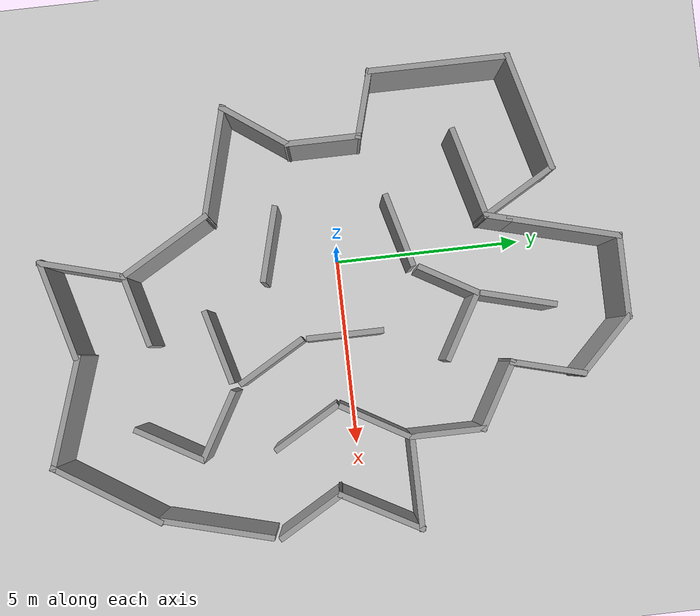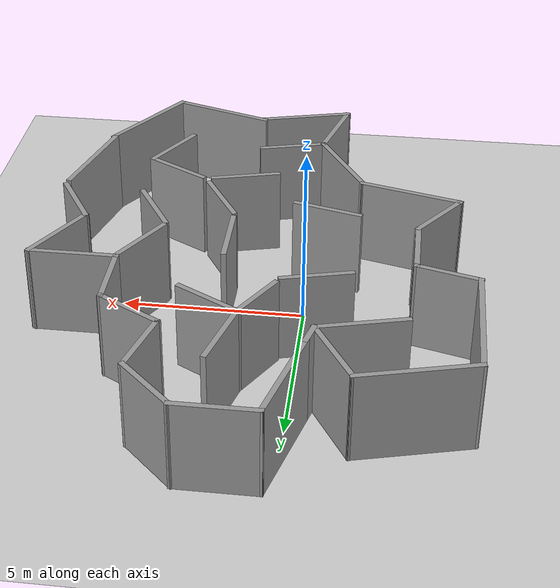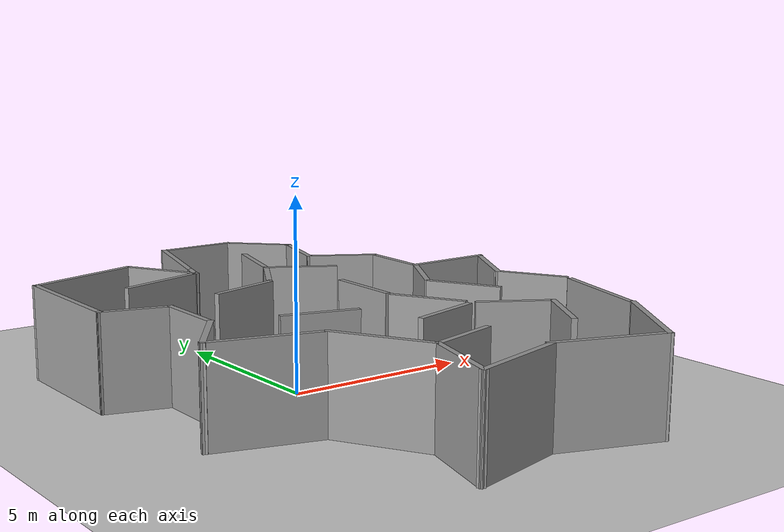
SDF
<sdf version="1.7">
 <world name="default">
  <light name="sun" type="directional">
   <pose>0 0 10 0 -0 0</pose>
   <diffuse>0.8 0.8 0.8 1</diffuse>
   <specular>0.2 0.2 0.2 1</specular>
   <attenuation>
    <range>1000</range>
    <constant>0.9</constant>
    <linear>0.01</linear>
    <quadratic>0.001</quadratic>
   </attenuation>
   <direction>-0.5 0.1 -0.9</direction>
   <spot><inner_angle>0</inner_angle><outer_angle>0</outer_angle><falloff>0</falloff></spot>
  </light>
  <model name="ground_plane">
   <static>1</static>
   <link name="link">
    <collision name="collision">
     <geometry><plane><normal>0 0 1</normal><size>100 100</size></plane></geometry>
     <surface>
      <contact><collide_bitmask>65535</collide_bitmask></contact>
      <friction><ode><mu>100</mu><mu2>50</mu2></ode></friction>
     </surface>
    </collision>
    <visual name="visual">
     <cast_shadows>0</cast_shadows>
     <geometry><plane><normal>0 0 1</normal><size>100 100</size></plane></geometry>
     <material>
      <script><uri>file://media/materials/scripts/gazebo.material</uri><name>Gazebo/Grey</name></script>
     </material>
    </visual>
   </link>
  </model>
  <gravity>0 0 -9.8</gravity>
  <magnetic_field>6e-06 2.3e-05 -4.2e-05</magnetic_field>
  <atmosphere type="adiabatic"/>
  <physics type="ode">
   <max_step_size>0.001</max_step_size>
   <real_time_factor>1</real_time_factor>
   <real_time_update_rate>1000</real_time_update_rate>
  </physics>
  <scene><ambient>0.4 0.4 0.4 1</ambient><background>0.7 0.7 0.7 1</background><shadows>1</shadows></scene>
  <spherical_coordinates>
   <surface_model>EARTH_WGS84</surface_model>
   <latitude_deg>0</latitude_deg>
   <longitude_deg>0</longitude_deg>
   <elevation>0</elevation>
   <heading_deg>0</heading_deg>
  </spherical_coordinates>
  <model name="better_simple_wall">
   <pose>0.330154 -0.017954 0 0 -0 0</pose>
   <link name="Wall_0">
    <collision name="Wall_0_Collision">
     <geometry><box><size>2 0.15 2.5</size></box></geometry>
     <pose>0 0 1.25 0 -0 0</pose>
    </collision>
    <visual name="Wall_0_Visual">
     <pose>0 0 1.25 0 -0 0</pose>
     <geometry><box><size>2 0.15 2.5</size></box></geometry>
     <material>
      <script><uri>file://media/materials/scripts/gazebo.material</uri><name>Gazebo/Grey</name></script>
      <ambient>1 1 1 1</ambient>
     </material>
     <meta><layer>0</layer></meta>
    </visual>
    <pose>1.71954 0.004581 0 0 -0 -1.5708</pose>
   </link>
   <link name="Wall_2">
    <collision name="Wall_2_Collision">
     <geometry><box><size>2 0.15 2.5</size></box></geometry>
     <pose>0 0 1.25 0 -0 0</pose>
    </collision>
    <visual name="Wall_2_Visual">
     <pose>0 0 1.25 0 -0 0</pose>
     <geometry><box><size>2 0.15 2.5</size></box></geometry>
     <material>
      <script><uri>file://media/materials/scripts/gazebo.material</uri><name>Gazebo/Grey</name></script>
      <ambient>1 1 1 1</ambient>
     </material>
     <meta><layer>0</layer></meta>
    </visual>
    <pose>-0.809206 -1.68506 0 0 -0 -0.261799</pose>
   </link>
   <link name="Wall_4">
    <collision name="Wall_4_Collision">
     <geometry><box><size>2 0.15 2.5</size></box></geometry>
     <pose>0 0 1.25 0 -0 0</pose>
    </collision>
    <visual name="Wall_4_Visual">
     <pose>0 0 1.25 0 -0 0</pose>
     <geometry><box><size>2 0.15 2.5</size></box></geometry>
     <material>
      <script><uri>file://media/materials/scripts/gazebo.material</uri><name>Gazebo/Grey</name></script>
      <ambient>1 1 1 1</ambient>
     </material>
     <meta><layer>0</layer></meta>
    </visual>
    <pose>-0.795069 1.68506 0 0 -0 -2.87979</pose>
   </link>
   <static>1</static>
  </model>
  <model name="simple_map">
   <pose>1.27368 -0.261846 0 0 -0 0</pose>
   <link name="Wall_0">
    <collision name="Wall_0_Collision">
     <geometry><box><size>1.75 0.15 2.5</size></box></geometry>
     <pose>0 0 1.25 0 -0 0</pose>
    </collision>
    <visual name="Wall_0_Visual">
     <pose>0 0 1.25 0 -0 0</pose>
     <geometry><box><size>1.75 0.15 2.5</size></box></geometry>
     <material>
      <script><uri>file://media/materials/scripts/gazebo.material</uri><name>Gazebo/Grey</name></script>
      <ambient>1 1 1 1</ambient>
     </material>
     <meta><layer>0</layer></meta>
    </visual>
    <pose>-0.321911 3.0613 0 0 -0 -2.0944</pose>
   </link>
   <link name="Wall_12">
    <collision name="Wall_12_Collision">
     <geometry><box><size>2.75 0.15 2.5</size></box></geometry>
     <pose>0 0 1.25 0 -0 0</pose>
    </collision>
    <visual name="Wall_12_Visual">
     <pose>0 0 1.25 0 -0 0</pose>
     <geometry><box><size>2.75 0.15 2.5</size></box></geometry>
     <material>
      <script><uri>file://media/materials/scripts/gazebo.material</uri><name>Gazebo/Grey</name></script>
      <ambient>1 1 1 1</ambient>
     </material>
     <meta><layer>0</layer></meta>
    </visual>
    <pose>-1.98299 -4.12801 0 0 -0 -1.0472</pose>
   </link>
   <link name="Wall_13">
    <collision name="Wall_13_Collision">
     <geometry><box><size>2 0.15 2.5</size></box></geometry>
     <pose>0 0 1.25 0 -0 0</pose>
    </collision>
    <visual name="Wall_13_Visual">
     <pose>0 0 1.25 0 -0 0</pose>
     <geometry><box><size>2 0.15 2.5</size></box></geometry>
     <material>
      <script><uri>file://media/materials/scripts/gazebo.material</uri><name>Gazebo/Grey</name></script>
      <ambient>1 1 1 1</ambient>
     </material>
     <meta><layer>0</layer></meta>
    </visual>
    <pose>-0.439506 -5.01444 0 0 -0 0.261799</pose>
   </link>
   <link name="Wall_16">
    <collision name="Wall_16_Collision">
     <geometry><box><size>2 0.15 2.5</size></box></geometry>
     <pose>0 0 1.25 0 -0 0</pose>
    </collision>
    <visual name="Wall_16_Visual">
     <pose>0 0 1.25 0 -0 0</pose>
     <geometry><box><size>2 0.15 2.5</size></box></geometry>
     <material>
      <script><uri>file://media/materials/scripts/gazebo.material</uri><name>Gazebo/Grey</name></script>
      <ambient>1 1 1 1</ambient>
     </material>
     <meta><layer>0</layer></meta>
    </visual>
    <pose>3.55474 2.58521 0 0 -0 -1.5708</pose>
   </link>
   <link name="Wall_18">
    <collision name="Wall_18_Collision">
     <geometry><box><size>2 0.15 2.5</size></box></geometry>
     <pose>0 0 1.25 0 -0 0</pose>
    </collision>
    <visual name="Wall_18_Visual">
     <pose>0 0 1.25 0 -0 0</pose>
     <geometry><box><size>2 0.15 2.5</size></box></geometry>
     <material>
      <script><uri>file://media/materials/scripts/gazebo.material</uri><name>Gazebo/Grey</name></script>
      <ambient>1 1 1 1</ambient>
     </material>
     <meta><layer>0</layer></meta>
    </visual>
    <pose>1.2583 -1.70687 0 0 -0 2.0944</pose>
   </link>
   <link name="Wall_2">
    <collision name="Wall_2_Collision">
     <geometry><box><size>2 0.15 2.5</size></box></geometry>
     <pose>0 0 1.25 0 -0 0</pose>
    </collision>
    <visual name="Wall_2_Visual">
     <pose>0 0 1.25 0 -0 0</pose>
     <geometry><box><size>2 0.15 2.5</size></box></geometry>
     <material>
      <script><uri>file://media/materials/scripts/gazebo.material</uri><name>Gazebo/Grey</name></script>
      <ambient>1 1 1 1</ambient>
     </material>
     <meta><layer>0</layer></meta>
    </visual>
    <pose>3.04101 -0.988618 0 0 -0 2.0944</pose>
   </link>
   <link name="Wall_20">
    <collision name="Wall_20_Collision">
     <geometry><box><size>2 0.15 2.5</size></box></geometry>
     <pose>0 0 1.25 0 -0 0</pose>
    </collision>
    <visual name="Wall_20_Visual">
     <pose>0 0 1.25 0 -0 0</pose>
     <geometry><box><size>2 0.15 2.5</size></box></geometry>
     <material>
      <script><uri>file://media/materials/scripts/gazebo.material</uri><name>Gazebo/Grey</name></script>
      <ambient>1 1 1 1</ambient>
     </material>
     <meta><layer>0</layer></meta>
    </visual>
    <pose>2.75631 -3.24967 0 0 -0 -0.523599</pose>
   </link>
   <link name="Wall_21">
    <collision name="Wall_21_Collision">
     <geometry><box><size>2 0.15 2.5</size></box></geometry>
     <pose>0 0 1.25 0 -0 0</pose>
    </collision>
    <visual name="Wall_21_Visual">
     <pose>0 0 1.25 0 -0 0</pose>
     <geometry><box><size>2 0.15 2.5</size></box></geometry>
     <material>
      <script><uri>file://media/materials/scripts/gazebo.material</uri><name>Gazebo/Grey</name></script>
      <ambient>1 1 1 1</ambient>
     </material>
     <meta><layer>0</layer></meta>
    </visual>
    <pose>3.09488 -4.51325 0 0 -0 -2.0944</pose>
   </link>
   <link name="Wall_23">
    <collision name="Wall_23_Collision">
     <geometry><box><size>2 0.15 2.5</size></box></geometry>
     <pose>0 0 1.25 0 -0 0</pose>
    </collision>
    <visual name="Wall_23_Visual">
     <pose>0 0 1.25 0 -0 0</pose>
     <geometry><box><size>2 0.15 2.5</size></box></geometry>
     <material>
      <script><uri>file://media/materials/scripts/gazebo.material</uri><name>Gazebo/Grey</name></script>
      <ambient>1 1 1 1</ambient>
     </material>
     <meta><layer>0</layer></meta>
    </visual>
    <pose>2.75367 3.97271 0 0 -0 2.61799</pose>
   </link>
   <link name="Wall_24">
    <collision name="Wall_24_Collision">
     <geometry><box><size>2 0.15 2.5</size></box></geometry>
     <pose>0 0 1.25 0 -0 0</pose>
    </collision>
    <visual name="Wall_24_Visual">
     <pose>0 0 1.25 0 -0 0</pose>
     <geometry><box><size>2 0.15 2.5</size></box></geometry>
     <material>
      <script><uri>file://media/materials/scripts/gazebo.material</uri><name>Gazebo/Grey</name></script>
      <ambient>1 1 1 1</ambient>
     </material>
     <meta><layer>0</layer></meta>
    </visual>
    <pose>2.192 5.32869 0 0 -0 1.309</pose>
   </link>
   <link name="Wall_26">
    <collision name="Wall_26_Collision">
     <geometry><box><size>2 0.15 2.5</size></box></geometry>
     <pose>0 0 1.25 0 -0 0</pose>
    </collision>
    <visual name="Wall_26_Visual">
     <pose>0 0 1.25 0 -0 0</pose>
     <geometry><box><size>2 0.15 2.5</size></box></geometry>
     <material>
      <script><uri>file://media/materials/scripts/gazebo.material</uri><name>Gazebo/Grey</name></script>
      <ambient>1 1 1 1</ambient>
     </material>
     <meta><layer>0</layer></meta>
    </visual>
    <pose>0.349131 4.77759 0 0 -0 1.309</pose>
   </link>
   <link name="Wall_28">
    <collision name="Wall_28_Collision">
     <geometry><box><size>3 0.15 2.5</size></box></geometry>
     <pose>0 0 1.25 0 -0 0</pose>
    </collision>
    <visual name="Wall_28_Visual">
     <pose>0 0 1.25 0 -0 0</pose>
     <geometry><box><size>3 0.15 2.5</size></box></geometry>
     <material>
      <script><uri>file://media/materials/scripts/gazebo.material</uri><name>Gazebo/Grey</name></script>
      <ambient>1 1 1 1</ambient>
     </material>
     <meta><layer>0</layer></meta>
    </visual>
    <pose>-4.00943 -2.63336 0 0 -0 2.87979</pose>
   </link>
   <link name="Wall_30">
    <collision name="Wall_30_Collision">
     <geometry><box><size>2 0.15 2.5</size></box></geometry>
     <pose>0 0 1.25 0 -0 0</pose>
    </collision>
    <visual name="Wall_30_Visual">
     <pose>0 0 1.25 0 -0 0</pose>
     <geometry><box><size>2 0.15 2.5</size></box></geometry>
     <material>
      <script><uri>file://media/materials/scripts/gazebo.material</uri><name>Gazebo/Grey</name></script>
      <ambient>1 1 1 1</ambient>
     </material>
     <meta><layer>0</layer></meta>
    </visual>
    <pose>-4.26945 0.22698 0 0 -0 -1.5708</pose>
   </link>
   <link name="Wall_38">
    <collision name="Wall_38_Collision">
     <geometry><box><size>3 0.15 2.5</size></box></geometry>
     <pose>0 0 1.25 0 -0 0</pose>
    </collision>
    <visual name="Wall_38_Visual">
     <pose>0 0 1.25 0 -0 0</pose>
     <geometry><box><size>3 0.15 2.5</size></box></geometry>
     <material>
      <script><uri>file://media/materials/scripts/gazebo.material</uri><name>Gazebo/Grey</name></script>
      <ambient>1 1 1 1</ambient>
     </material>
     <meta><layer>0</layer></meta>
    </visual>
    <pose>5.34405 -3.54717 0 0 -0 1.309</pose>
   </link>
   <link name="Wall_4">
    <collision name="Wall_4_Collision">
     <geometry><box><size>2 0.15 2.5</size></box></geometry>
     <pose>0 0 1.25 0 -0 0</pose>
    </collision>
    <visual name="Wall_4_Visual">
     <pose>0 0 1.25 0 -0 0</pose>
     <geometry><box><size>2 0.15 2.5</size></box></geometry>
     <material>
      <script><uri>file://media/materials/scripts/gazebo.material</uri><name>Gazebo/Grey</name></script>
      <ambient>1 1 1 1</ambient>
     </material>
     <meta><layer>0</layer></meta>
    </visual>
    <pose>0.737466 -3.02253 0 0 -0 0.261799</pose>
   </link>
   <link name="Wall_41">
    <collision name="Wall_41_Collision">
     <geometry><box><size>3.21051 0.15 2.5</size></box></geometry>
     <pose>0 0 1.25 0 -0 0</pose>
    </collision>
    <visual name="Wall_41_Visual">
     <pose>0 0 1.25 0 -0 0</pose>
     <geometry><box><size>3.21051 0.15 2.5</size></box></geometry>
     <material>
      <script><uri>file://media/materials/scripts/gazebo.material</uri><name>Gazebo/Grey</name></script>
      <ambient>1 1 1 1</ambient>
     </material>
     <meta><layer>0</layer></meta>
    </visual>
    <pose>4.18206 -6.24468 0 0 -0 -2.14109</pose>
   </link>
   <link name="Wall_42">
    <collision name="Wall_42_Collision">
     <geometry><box><size>3.04963 0.15 2.5</size></box></geometry>
     <pose>0 0 1.25 0 -0 0</pose>
    </collision>
    <visual name="Wall_42_Visual">
     <pose>0 0 1.25 0 -0 0</pose>
     <geometry><box><size>3.04963 0.15 2.5</size></box></geometry>
     <material>
      <script><uri>file://media/materials/scripts/gazebo.material</uri><name>Gazebo/Grey</name></script>
      <ambient>1 1 1 1</ambient>
     </material>
     <meta><layer>0</layer></meta>
    </visual>
    <pose>1.97946 -7.07738 0 0 -0 2.82209</pose>
   </link>
   <link name="Wall_43">
    <collision name="Wall_43_Collision">
     <geometry><box><size>2.75 0.15 2.5</size></box></geometry>
     <pose>0 0 1.25 0 -0 0</pose>
    </collision>
    <visual name="Wall_43_Visual">
     <pose>0 0 1.25 0 -0 0</pose>
     <geometry><box><size>2.75 0.15 2.5</size></box></geometry>
     <material>
      <script><uri>file://media/materials/scripts/gazebo.material</uri><name>Gazebo/Grey</name></script>
      <ambient>1 1 1 1</ambient>
     </material>
     <meta><layer>0</layer></meta>
    </visual>
    <pose>-0.652686 -7.01618 0 0 -0 -2.87979</pose>
   </link>
   <link name="Wall_45">
    <collision name="Wall_45_Collision">
     <geometry><box><size>2.32625 0.15 2.5</size></box></geometry>
     <pose>0 0 1.25 0 -0 0</pose>
    </collision>
    <visual name="Wall_45_Visual">
     <pose>0 0 1.25 0 -0 0</pose>
     <geometry><box><size>2.32625 0.15 2.5</size></box></geometry>
     <material>
      <script><uri>file://media/materials/scripts/gazebo.material</uri><name>Gazebo/Grey</name></script>
      <ambient>1 1 1 1</ambient>
     </material>
     <meta><layer>0</layer></meta>
    </visual>
    <pose>-1.62069 -6.30324 0 0 -0 1.30321</pose>
   </link>
   <link name="Wall_47">
    <collision name="Wall_47_Collision">
     <geometry><box><size>2 0.15 2.5</size></box></geometry>
     <pose>0 0 1.25 0 -0 0</pose>
    </collision>
    <visual name="Wall_47_Visual">
     <pose>0 0 1.25 0 -0 0</pose>
     <geometry><box><size>2 0.15 2.5</size></box></geometry>
     <material>
      <script><uri>file://media/materials/scripts/gazebo.material</uri><name>Gazebo/Grey</name></script>
      <ambient>1 1 1 1</ambient>
     </material>
     <meta><layer>0</layer></meta>
    </visual>
    <pose>5.29145 -1.10755 0 0 -0 2.0944</pose>
   </link>
   <link name="Wall_48">
    <collision name="Wall_48_Collision">
     <geometry><box><size>2.39169 0.15 2.5</size></box></geometry>
     <pose>0 0 1.25 0 -0 0</pose>
    </collision>
    <visual name="Wall_48_Visual">
     <pose>0 0 1.25 0 -0 0</pose>
     <geometry><box><size>2.39169 0.15 2.5</size></box></geometry>
     <material>
      <script><uri>file://media/materials/scripts/gazebo.material</uri><name>Gazebo/Grey</name></script>
      <ambient>1 1 1 1</ambient>
     </material>
     <meta><layer>0</layer></meta>
    </visual>
    <pose>5.36684 0.676865 0 0 -0 1.07025</pose>
   </link>
   <link name="Wall_49">
    <collision name="Wall_49_Collision">
     <geometry><box><size>2.5 0.15 2.5</size></box></geometry>
     <pose>0 0 1.25 0 -0 0</pose>
    </collision>
    <visual name="Wall_49_Visual">
     <pose>0 0 1.25 0 -0 0</pose>
     <geometry><box><size>2.5 0.15 2.5</size></box></geometry>
     <material>
      <script><uri>file://media/materials/scripts/gazebo.material</uri><name>Gazebo/Grey</name></script>
      <ambient>1 1 1 1</ambient>
     </material>
     <meta><layer>0</layer></meta>
    </visual>
    <pose>4.72974 1.66021 0 0 -0 3.14159</pose>
   </link>
   <link name="Wall_51">
    <collision name="Wall_51_Collision">
     <geometry><box><size>2 0.15 2.5</size></box></geometry>
     <pose>0 0 1.25 0 -0 0</pose>
    </collision>
    <visual name="Wall_51_Visual">
     <pose>0 0 1.25 0 -0 0</pose>
     <geometry><box><size>2 0.15 2.5</size></box></geometry>
     <material>
      <script><uri>file://media/materials/scripts/gazebo.material</uri><name>Gazebo/Grey</name></script>
      <ambient>1 1 1 1</ambient>
     </material>
     <meta><layer>0</layer></meta>
    </visual>
    <pose>1.77733 6.87624 0 0 -0 2.35619</pose>
   </link>
   <link name="Wall_52">
    <collision name="Wall_52_Collision">
     <geometry><box><size>2.25 0.15 2.5</size></box></geometry>
     <pose>0 0 1.25 0 -0 0</pose>
    </collision>
    <visual name="Wall_52_Visual">
     <pose>0 0 1.25 0 -0 0</pose>
     <geometry><box><size>2.25 0.15 2.5</size></box></geometry>
     <material>
      <script><uri>file://media/materials/scripts/gazebo.material</uri><name>Gazebo/Grey</name></script>
      <ambient>1 1 1 1</ambient>
     </material>
     <meta><layer>0</layer></meta>
    </visual>
    <pose>0.07326 7.53032 0 0 -0 3.14159</pose>
   </link>
   <link name="Wall_53">
    <collision name="Wall_53_Collision">
     <geometry><box><size>3 0.15 2.5</size></box></geometry>
     <pose>0 0 1.25 0 -0 0</pose>
    </collision>
    <visual name="Wall_53_Visual">
     <pose>0 0 1.25 0 -0 0</pose>
     <geometry><box><size>3 0.15 2.5</size></box></geometry>
     <material>
      <script><uri>file://media/materials/scripts/gazebo.material</uri><name>Gazebo/Grey</name></script>
      <ambient>1 1 1 1</ambient>
     </material>
     <meta><layer>0</layer></meta>
    </visual>
    <pose>-1.34556 6.15387 0 0 -0 -1.8326</pose>
   </link>
   <link name="Wall_54">
    <collision name="Wall_54_Collision">
     <geometry><box><size>0.75 0.15 2.5</size></box></geometry>
     <pose>0 0 1.25 0 -0 0</pose>
    </collision>
    <visual name="Wall_54_Visual">
     <pose>0 0 1.25 0 -0 0</pose>
     <geometry><box><size>0.75 0.15 2.5</size></box></geometry>
     <material>
      <script><uri>file://media/materials/scripts/gazebo.material</uri><name>Gazebo/Grey</name></script>
      <ambient>1 1 1 1</ambient>
     </material>
     <meta><layer>0</layer></meta>
    </visual>
    <pose>-1.79202 4.48765 0 0 -0 -1.8326</pose>
   </link>
   <link name="Wall_55">
    <collision name="Wall_55_Collision">
     <geometry><box><size>2.5 0.15 2.5</size></box></geometry>
     <pose>0 0 1.25 0 -0 0</pose>
    </collision>
    <visual name="Wall_55_Visual">
     <pose>0 0 1.25 0 -0 0</pose>
     <geometry><box><size>2.5 0.15 2.5</size></box></geometry>
     <material>
      <script><uri>file://media/materials/scripts/gazebo.material</uri><name>Gazebo/Grey</name></script>
      <ambient>1 1 1 1</ambient>
     </material>
     <meta><layer>0</layer></meta>
    </visual>
    <pose>-3.00463 3.89376 0 0 -0 -2.87979</pose>
   </link>
   <link name="Wall_57">
    <collision name="Wall_57_Collision">
     <geometry><box><size>2.25 0.15 2.5</size></box></geometry>
     <pose>0 0 1.25 0 -0 0</pose>
    </collision>
    <visual name="Wall_57_Visual">
     <pose>0 0 1.25 0 -0 0</pose>
     <geometry><box><size>2.25 0.15 2.5</size></box></geometry>
     <material>
      <script><uri>file://media/materials/scripts/gazebo.material</uri><name>Gazebo/Grey</name></script>
      <ambient>1 1 1 1</ambient>
     </material>
     <meta><layer>0</layer></meta>
    </visual>
    <pose>-2.39467 5.1072 0 0 -0 2.0944</pose>
   </link>
   <link name="Wall_58">
    <collision name="Wall_58_Collision">
     <geometry><box><size>3.25 0.15 2.5</size></box></geometry>
     <pose>0 0 1.25 0 -0 0</pose>
    </collision>
    <visual name="Wall_58_Visual">
     <pose>0 0 1.25 0 -0 0</pose>
     <geometry><box><size>3.25 0.15 2.5</size></box></geometry>
     <material>
      <script><uri>file://media/materials/scripts/gazebo.material</uri><name>Gazebo/Grey</name></script>
      <ambient>1 1 1 1</ambient>
     </material>
     <meta><layer>0</layer></meta>
    </visual>
    <pose>-4.41685 5.61536 0 0 -0 -2.87979</pose>
   </link>
   <link name="Wall_6">
    <collision name="Wall_6_Collision">
     <geometry><box><size>2 0.15 2.5</size></box></geometry>
     <pose>0 0 1.25 0 -0 0</pose>
    </collision>
    <visual name="Wall_6_Visual">
     <pose>0 0 1.25 0 -0 0</pose>
     <geometry><box><size>2 0.15 2.5</size></box></geometry>
     <material>
      <script><uri>file://media/materials/scripts/gazebo.material</uri><name>Gazebo/Grey</name></script>
      <ambient>1 1 1 1</ambient>
     </material>
     <meta><layer>0</layer></meta>
    </visual>
    <pose>0.879163 3.29162 0 0 -0 -0.523599</pose>
   </link>
   <link name="Wall_60">
    <collision name="Wall_60_Collision">
     <geometry><box><size>3.75 0.15 2.5</size></box></geometry>
     <pose>0 0 1.25 0 -0 0</pose>
    </collision>
    <visual name="Wall_60_Visual">
     <pose>0 0 1.25 0 -0 0</pose>
     <geometry><box><size>3.75 0.15 2.5</size></box></geometry>
     <material>
      <script><uri>file://media/materials/scripts/gazebo.material</uri><name>Gazebo/Grey</name></script>
      <ambient>1 1 1 1</ambient>
     </material>
     <meta><layer>0</layer></meta>
    </visual>
    <pose>-5.91404 3.41419 0 0 -0 -1.5708</pose>
   </link>
   <link name="Wall_61">
    <collision name="Wall_61_Collision">
     <geometry><box><size>1.85831 0.15 2.5</size></box></geometry>
     <pose>0 0 1.25 0 -0 0</pose>
    </collision>
    <visual name="Wall_61_Visual">
     <pose>0 0 1.25 0 -0 0</pose>
     <geometry><box><size>1.85831 0.15 2.5</size></box></geometry>
     <material>
      <script><uri>file://media/materials/scripts/gazebo.material</uri><name>Gazebo/Grey</name></script>
      <ambient>1 1 1 1</ambient>
     </material>
     <meta><layer>0</layer></meta>
    </visual>
    <pose>-5.09174 1.38308 0 0 -0 -0.27398</pose>
   </link>
   <link name="Wall_63">
    <collision name="Wall_63_Collision">
     <geometry><box><size>2.07365 0.15 2.5</size></box></geometry>
     <pose>0 0 1.25 0 -0 0</pose>
    </collision>
    <visual name="Wall_63_Visual">
     <pose>0 0 1.25 0 -0 0</pose>
     <geometry><box><size>2.07365 0.15 2.5</size></box></geometry>
     <material>
      <script><uri>file://media/materials/scripts/gazebo.material</uri><name>Gazebo/Grey</name></script>
      <ambient>1 1 1 1</ambient>
     </material>
     <meta><layer>0</layer></meta>
    </visual>
    <pose>-4.82766 -1.48128 0 0 -0 0.95161</pose>
   </link>
   <link name="Wall_9">
    <collision name="Wall_9_Collision">
     <geometry><box><size>2 0.15 2.5</size></box></geometry>
     <pose>0 0 1.25 0 -0 0</pose>
    </collision>
    <visual name="Wall_9_Visual">
     <pose>0 0 1.25 0 -0 0</pose>
     <geometry><box><size>2 0.15 2.5</size></box></geometry>
     <material>
      <script><uri>file://media/materials/scripts/gazebo.material</uri><name>Gazebo/Grey</name></script>
      <ambient>1 1 1 1</ambient>
     </material>
     <meta><layer>0</layer></meta>
    </visual>
    <pose>3.06407 0.757266 0 0 -0 -2.0944</pose>
   </link>
   <static>1</static>
  </model>
 </world>
</sdf>
